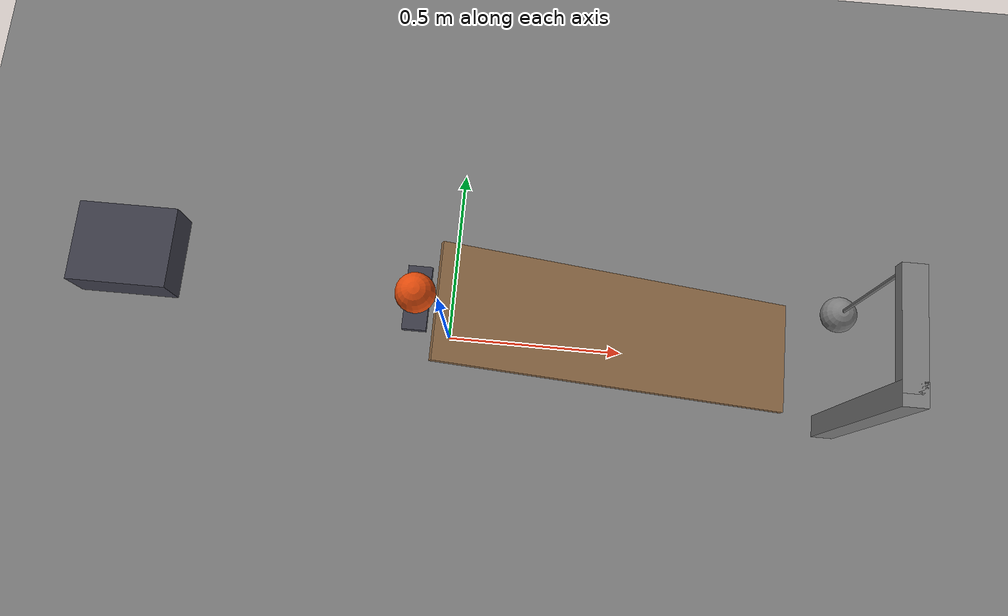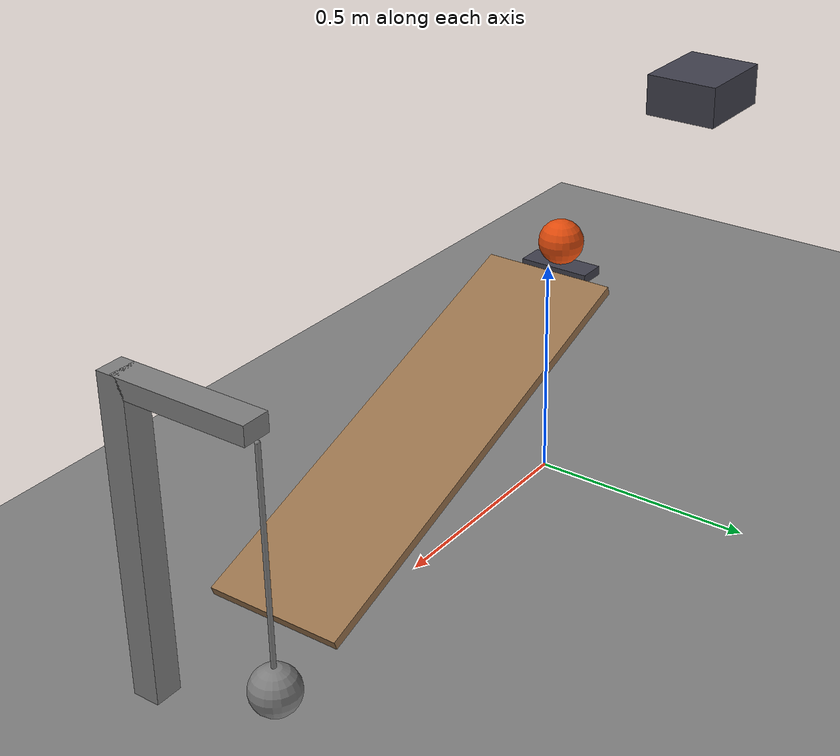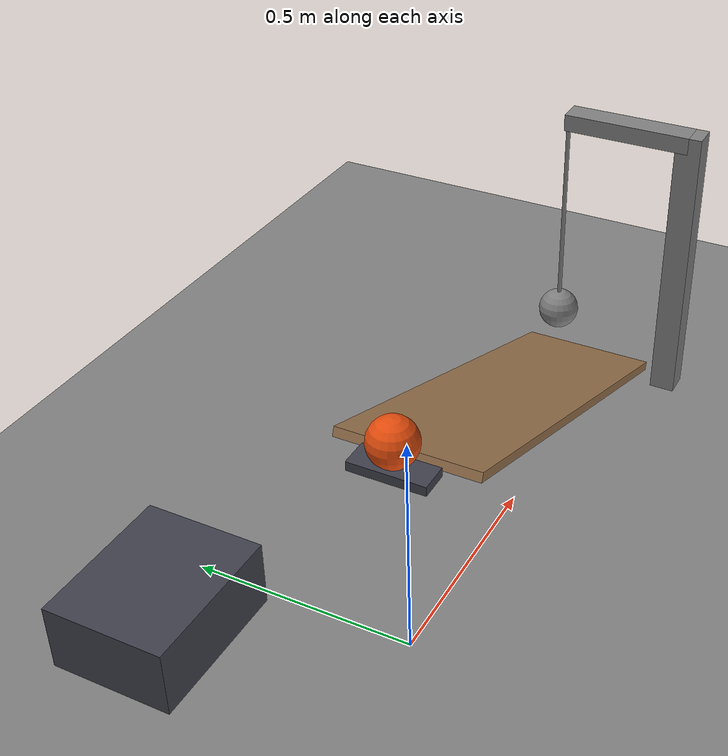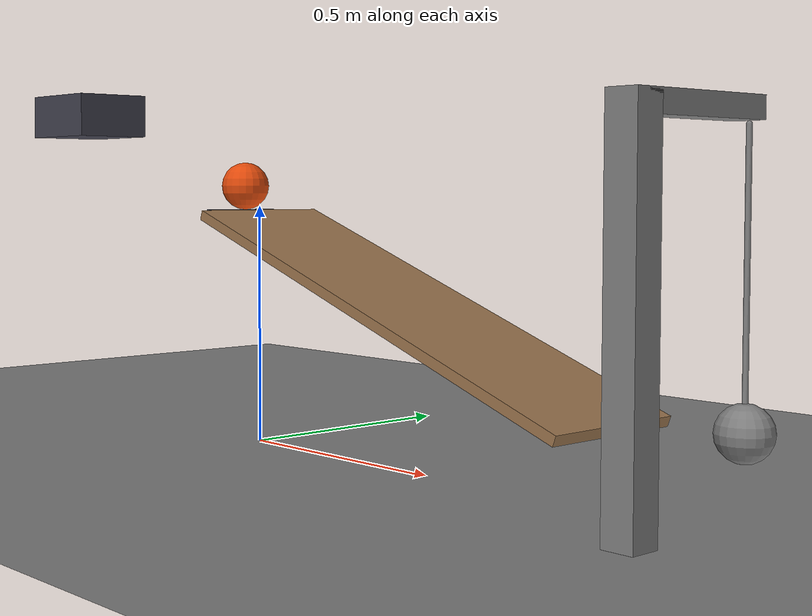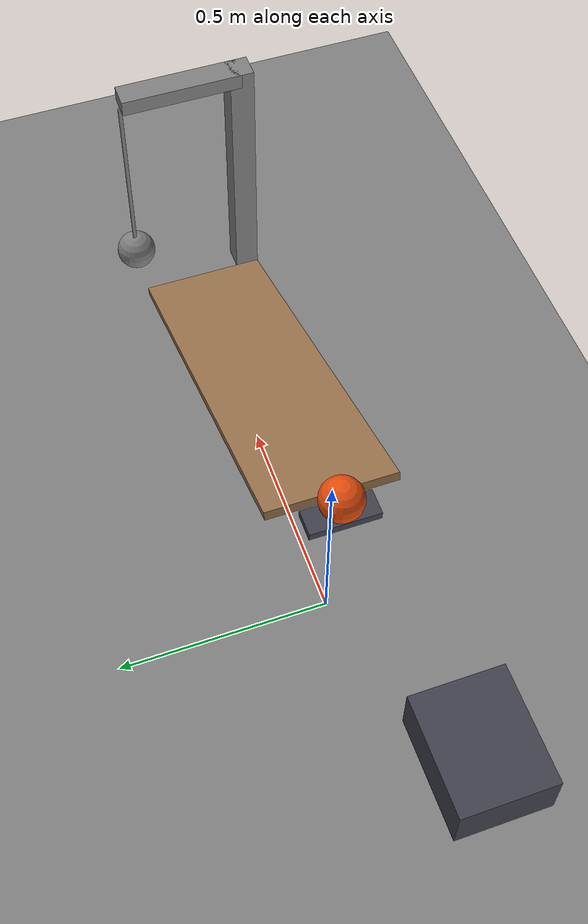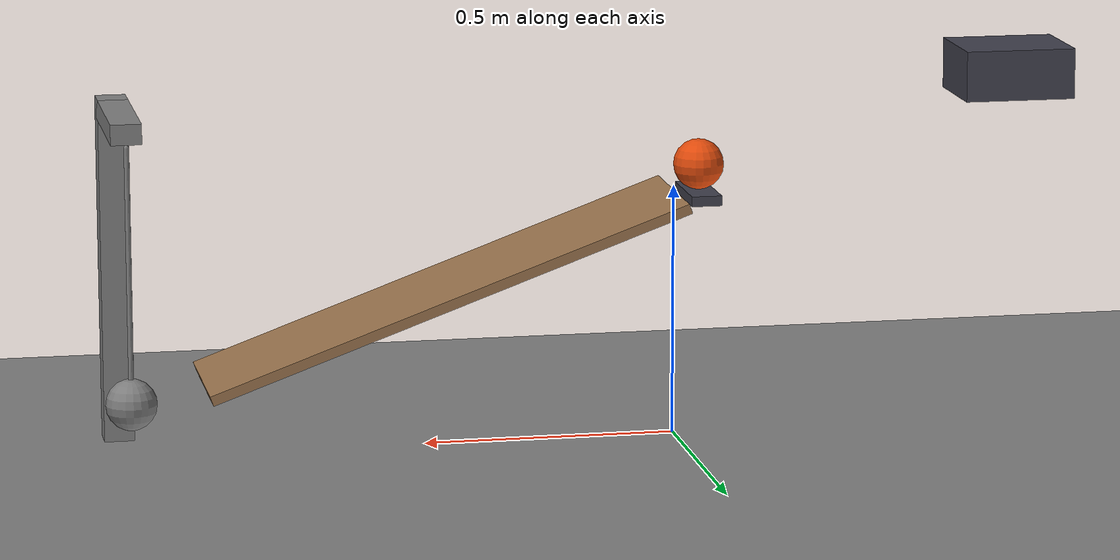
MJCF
<mujoco model="spring_cart_ramp_pendulum_approximation">
  <compiler angle="radian"/>
  <option timestep="0.002"/>
  <worldbody>
    <geom name="floor" type="plane" size="6 6 0.1" friction="0.68 0.005 0.0001"/>
    <body name="ramp1">
      <geom name="ramp1" type="box" pos="0.466426 0 0.311613" size="0.5 0.15 0.01" euler="0 0.349066 0" friction="0.68 0.005 0.0001" rgba="0.6 0.45 0.3 1"/>
    </body>
    <body name="ball seat">
      <geom name="ball seat" type="box" pos="-0.05 0 0.48202" size="0.03 0.08 0.01" friction="0.68 0.005 0.0001" rgba="0.25 0.25 0.3 1"/>
    </body>
    <body name="cart1" pos="33.757 0 94.5965">
      <joint name="cart_guide_hinge" type="hinge" pos="0 0 0" axis="0 1 0" stiffness="180000" springref="-0.002" damping="2000"/>
      <geom name="cart1" type="box" pos="-34.4368 0 -93.8835" size="0.11 0.09 0.05" mass="0.5" friction="0.68 0.005 0.0001" rgba="0.25 0.25 0.3 1"/>
    </body>
    <body name="ball1" pos="-0.05 0 0.54202">
      <freejoint/>
      <geom name="ball1" type="sphere" pos="0 0 0" size="0.05" mass="0.2" condim="6" friction="0.68 0.005 0.0001" rgba="0.9 0.3 0.05 1"/>
    </body>
    <geom name="pendulum1_stand_arm" type="box" pos="1.08969 -0.01 0.665" size="0.03 0.15 0.02" friction="0.68 0.005 0.0001"/>
    <geom name="pendulum1_stand_post" type="box" pos="1.08969 -0.16 0.3425" size="0.03 0.03 0.3425" friction="0.68 0.005 0.0001"/>
    <body name="pendulum1" pos="1.08969 0.14 0.64">
      <joint name="pivot" type="hinge" pos="0 0 0" axis="0 1 0" damping="0.04"/>
      <geom name="pendulum1_bob" type="sphere" pos="0 0 -0.5" size="0.05" mass="0.2" friction="0.68 0.005 0.0001"/>
      <geom name="pendulum1_rod" type="capsule" size="0.005" fromto="0 0 0 0 0 -0.45" mass="0.02" friction="0.68 0.005 0.0001"/>
    </body>
  </worldbody>
  <keyframe>
    <key name="start" qpos="0 -0.05 0 0.54202 1 0 0 0 0" qvel="0 0 0 0 0 0 0 0"/>
  </keyframe>
</mujoco>
